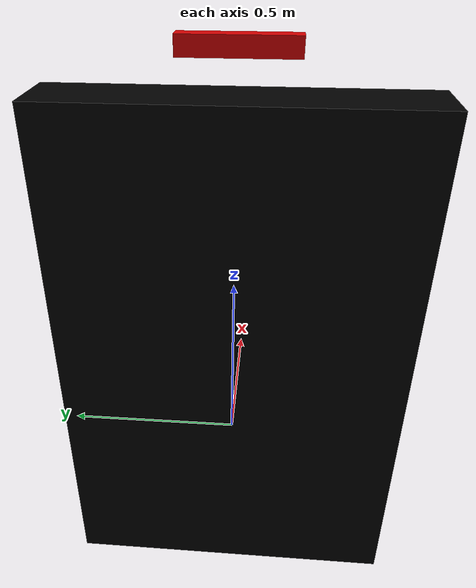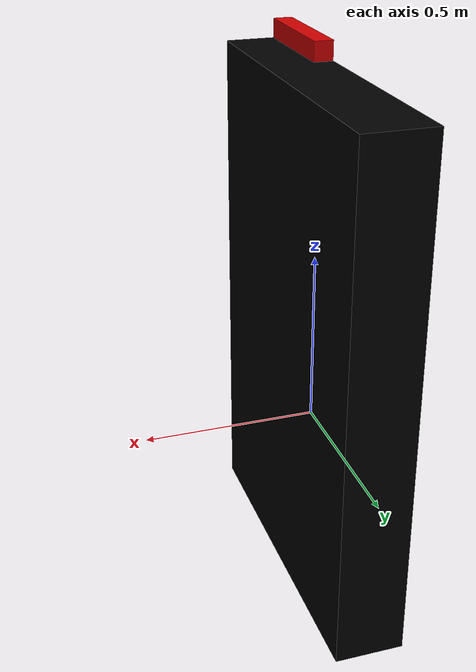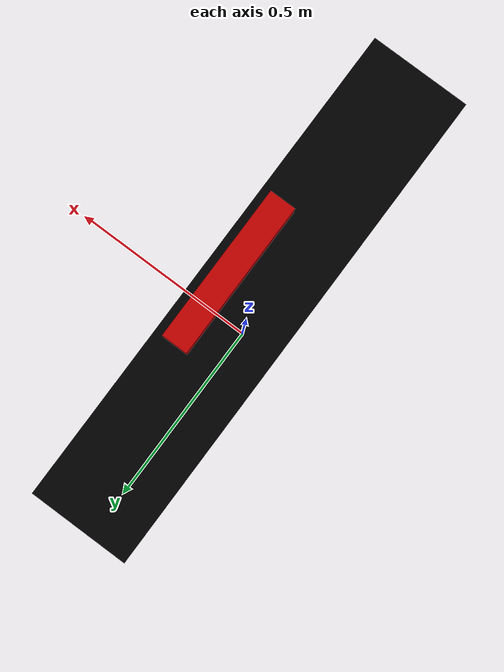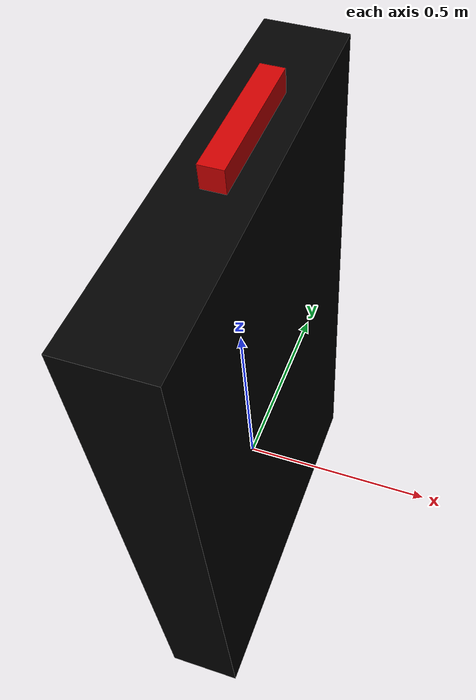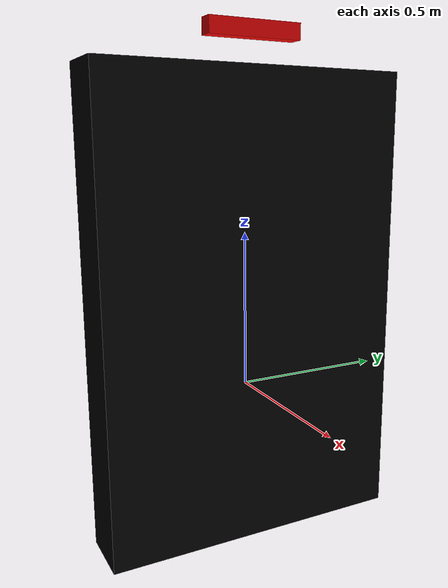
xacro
<?xml version="1.0"?>

<robot name="obj" xmlns:xacro="http://www.ros.org/wiki/xacro">
  <xacro:include filename="$(find heads)/urdf/materials.xacro" />
  <xacro:property name="camera_size" value="0.05" /> <!-- Size of square 'camera' box -->
  <xacro:property name="diam" value="0.3" /> <!-- Size of square 'camera' box -->

  <link name="world"/>
  <link name="table_link">

    <collision name='collision'>
      <geometry>
	    <box size="0.2 1 1.5"/>
      </geometry>
    </collision>

    <visual name='visual'>
      <geometry>
	    <box size="0.2 1 1.5"/>
      </geometry>
      <material name="black"/>
    </visual>

    <inertial>
      <origin xyz="0 0 0" />
      <mass value="50.0" />
      <inertia  ixx="1.0" ixy="0.0"  ixz="0.0"  iyy="100.0"  iyz="0.0"  izz="1.0" />
    </inertial>
  </link>

  <joint name="table_joint" type="floating">
    <origin xyz="0 0 0.25" rpy="0 0 0"/>
    <parent link="world"/>
    <child link="table_link"/>
  </joint>

  <joint name="camera_joint" type="fixed">
    <axis xyz="0 1 0" />
    <origin xyz="${camera_size} 0 0.85" rpy="0 0 0"/>
    <parent link="table_link"/>
    <child link="camera_link"/>
  </joint>

  <!-- Camera -->
  <link name="camera_link">
    <collision>
      <origin xyz="0 0 0" rpy="0 0 0"/>
      <geometry>
            <box size="${camera_size} ${diam} ${camera_size}"/>
      </geometry>
    </collision>

    <visual>
      <origin xyz="0 0 0" rpy="0 0 0"/>
      <geometry>
            <box size="${camera_size} ${diam} ${camera_size}"/>
      </geometry>
      <material name="red"/>
    </visual>

    <inertial>
      <mass value="1e-5" />
      <origin xyz="0 0 0" rpy="0 0 0"/>
      <inertia ixx="1e-6" ixy="0" ixz="0" iyy="1e-6" iyz="0" izz="1e-6" />
    </inertial>
  </link>

 <!-- camera -->
  <gazebo reference="camera_link">
    <sensor type="camera" name="camera1">
      <update_rate>30.0</update_rate>
      <camera name="head">
        <horizontal_fov>1.3962634</horizontal_fov>
        <image>
          <width>800</width>
          <height>800</height>
          <format>R8G8B8</format>
        </image>
        <clip>
          <near>0.02</near>
          <far>300</far>
        </clip>
        <noise>
          <type>gaussian</type>
          <!-- Noise is sampled independently per pixel on each frame.
               That pixel's noise value is added to each of its color
               channels, which at that point lie in the range [0,1]. -->
          <mean>0.0</mean>
          <stddev>0.007</stddev>
        </noise>
      </camera>
      <plugin name="table_camera_controller" filename="libgazebo_ros_camera.so">
        <alwaysOn>true</alwaysOn>
        <updateRate>0.0</updateRate>
        <cameraName>camera1</cameraName>
        <imageTopicName>image_raw</imageTopicName>
        <cameraInfoTopicName>camera_info</cameraInfoTopicName>
        <frameName>camera_link</frameName>
        <hackBaseline>0.07</hackBaseline>
        <distortionK1>0.0</distortionK1>
        <distortionK2>0.0</distortionK2>
        <distortionK3>0.0</distortionK3>
        <distortionT1>0.0</distortionT1>
        <distortionT2>0.0</distortionT2>
      </plugin>
    </sensor>
  </gazebo>

</robot>

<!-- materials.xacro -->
<robot>

  <material name="black">
    <color rgba="0.0 0.0 0.0 1.0"/>
  </material>

  <material name="blue">
    <color rgba="0.0 0.0 0.8 1.0"/>
  </material>

  <material name="green">
    <color rgba="0.0 0.8 0.0 1.0"/>
  </material>

  <material name="grey">
    <color rgba="0.2 0.2 0.2 1.0"/>
  </material>

  <material name="orange">
    <color rgba="${255/255} ${108/255} ${10/255} 1.0"/>
  </material>

  <material name="brown">
    <color rgba="${222/255} ${207/255} ${195/255} 1.0"/>
  </material>

  <material name="red">
    <color rgba="0.8 0.0 0.0 1.0"/>
  </material>

  <material name="white">
    <color rgba="1.0 1.0 1.0 1.0"/>
  </material>

 <gazebo reference="camera_link">
    <sensor type="camera" name="camera1">
      <update_rate>30.0</update_rate>
      <camera name="head">
        <horizontal_fov>1.3962634</horizontal_fov>
        <image>
          <width>800</width>
          <height>800</height>
          <format>R8G8B8</format>
        </image>
        <clip>
          <near>0.02</near>
          <far>300</far>
        </clip>
        <noise>
          <type>gaussian</type>
          <!-- Noise is sampled independently per pixel on each frame.
               That pixel's noise value is added to each of its color
               channels, which at that point lie in the range [0,1]. -->
          <mean>0.0</mean>
          <stddev>0.007</stddev>
        </noise>
      </camera>
      <plugin name="camera_controller" filename="libgazebo_ros_camera.so">
        <alwaysOn>true</alwaysOn>
        <updateRate>0.0</updateRate>
        <cameraName>rrbot/camera1</cameraName>
        <imageTopicName>image_raw</imageTopicName>
        <cameraInfoTopicName>camera_info</cameraInfoTopicName>
        <frameName>camera_link</frameName>
        <hackBaseline>0.07</hackBaseline>
        <distortionK1>0.0</distortionK1>
        <distortionK2>0.0</distortionK2>
        <distortionK3>0.0</distortionK3>
        <distortionT1>0.0</distortionT1>
        <distortionT2>0.0</distortionT2>
      </plugin>
    </sensor>
  </gazebo>

</robot>
